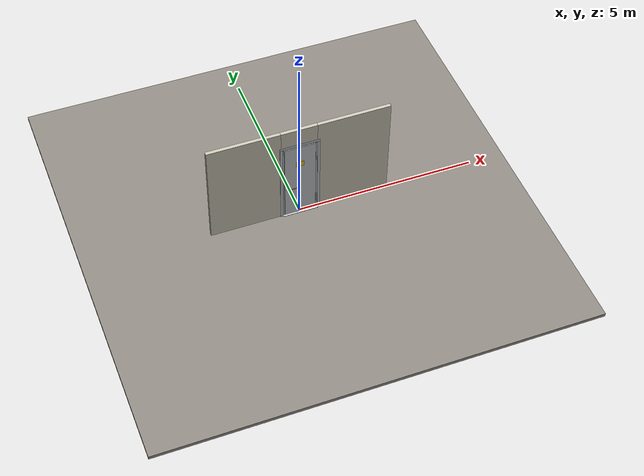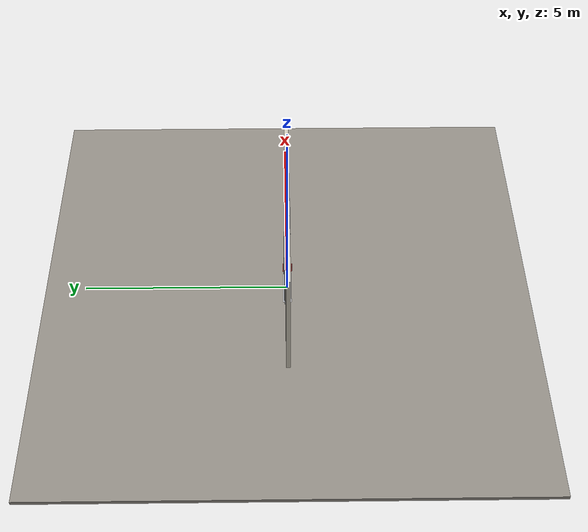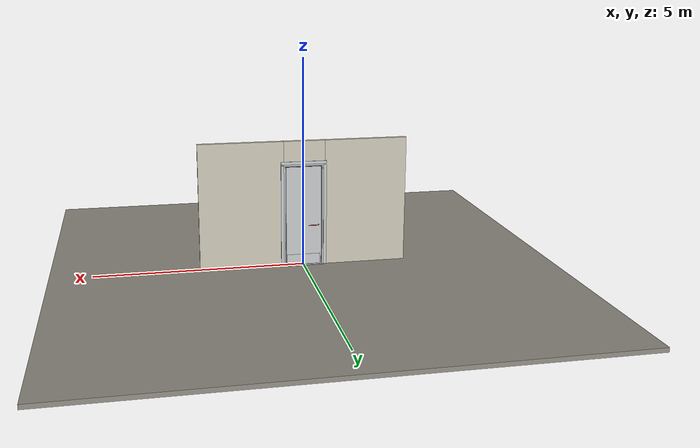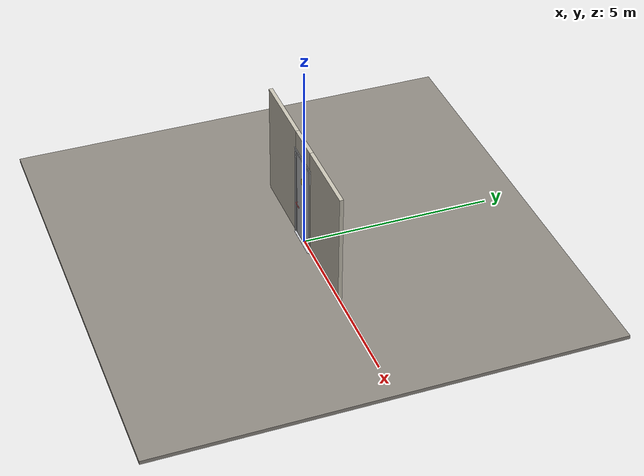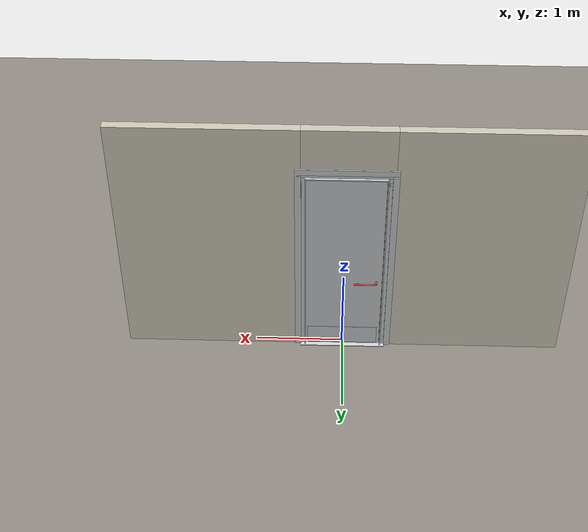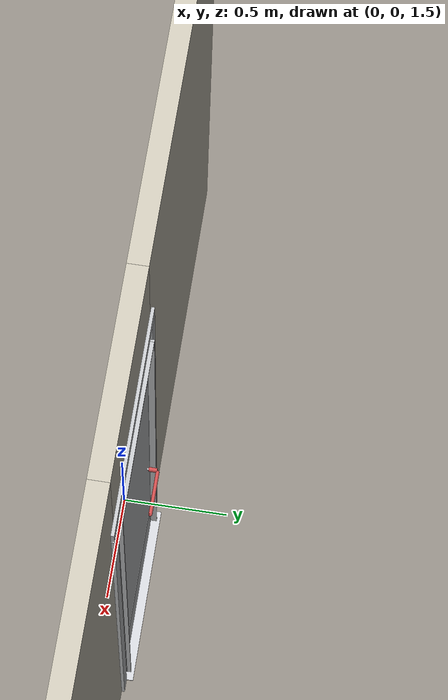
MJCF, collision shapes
<?xml version="1.0" ?>
<mujoco model="db0409_cold_storage_full">
  <compiler angle="radian" meshdir="../../hardware" texturedir="../../textures" autolimits="true" inertiafromgeom="false"/>
  <option timestep="0.002" integrator="implicitfast" cone="elliptic" impratio="10" noslip_iterations="3">
    <flag multiccd="enable"/>
  </option>
  <size memory="16M"/>
  <default>
    <geom condim="4" solref="0.005 1" solimp="0.95 0.99 0.001"/>
    <joint solreflimit="0.005 1" solimplimit="0.95 0.99 0.001"/>
    <tendon solreflimit="0.005 1"/>
    <equality solref="0.002 1"/>
  </default>
  <visual>
    <headlight ambient="0.4 0.4 0.4" diffuse="0.7 0.7 0.7" specular="0.2 0.2 0.2"/>
    <quality shadowsize="4096"/>
    <map znear="0.01" zfar="60"/>
  </visual>
  <asset>
    <mesh name="hinge_05d9a38dfa" file="hinge_05d9a38dfa.obj"/>
    <mesh name="hinge_jamb_953fb56768" file="hinge_jamb_953fb56768.obj"/>
    <mesh name="lever_40740b93f7" file="lever_40740b93f7.obj"/>
    <material name="mat_floor" rgba="0.55 0.53 0.5 1" specular="0.2" shininess="0.15" reflectance="0"/>
    <material name="mat_wall" rgba="0.78 0.76 0.7 1" specular="0.2" shininess="0.1" reflectance="0"/>
    <material name="mat_hinge" rgba="0.55 0.56 0.58 1" specular="0.8" shininess="0.55" reflectance="0.4"/>
    <material name="mat_leaf" rgba="0.75 0.76 0.77 1" specular="0.8" shininess="0.65" reflectance="0.4"/>
    <material name="mat_op_chrome" rgba="0.9 0.9 0.92 1" specular="0.8" shininess="0.9" reflectance="0.4"/>
    <material name="mat_trim" rgba="0.85 0.66 0.3 1" specular="0.8" shininess="0.75" reflectance="0.4"/>
    <material name="mat_bolt" rgba="0.75 0.76 0.77 1" specular="0.8" shininess="0.65" reflectance="0.4"/>
    <material name="mat_frame" rgba="0.75 0.76 0.77 1" specular="0.8" shininess="0.65" reflectance="0.4"/>
    <material name="mat_seal" rgba="0.1 0.1 0.1 1" specular="0.2" shininess="0.1" reflectance="0"/>
    <material name="mat_threshold" rgba="0.8 0.81 0.83 1" specular="0.8" shininess="0.6" reflectance="0.4"/>
    <material name="mat_kick" rgba="0.75 0.76 0.77 1" specular="0.8" shininess="0.65" reflectance="0.4"/>
    <material name="mat_placard" rgba="0.95 0.75 0.05 1" specular="0.2" shininess="0.5" reflectance="0"/>
    <texture name="skybox" type="skybox" builtin="gradient" rgb1="0.6 0.7 0.85" rgb2="0.9 0.92 0.95" width="256" height="256"/>
  </asset>
  <worldbody>
    <light name="sun" pos="1.5 -2.5 4" dir="-0.3 0.5 -0.8" directional="true" diffuse="0.8 0.8 0.8" specular="0.3 0.3 0.3" castshadow="true"/>
    <light name="fill" pos="-1.5 2.5 3" dir="0.3 -0.5 -0.7" directional="true" diffuse="0.35 0.35 0.4" castshadow="false"/>
    <camera name="robot_view" pos="0 -2.93125 2.05075" xyaxes="1 0 0 0 0.26963 0.962964" fovy="52"/>
    <camera name="far_view" pos="0 2.93125 2.05075" xyaxes="-1 0 0 0 -0.26963 0.962964" fovy="52"/>
    <camera name="iso" pos="-2.22775 -2.46225 2.51975" xyaxes="0.741536 -0.670913 0 0.242917 0.268487 0.932151" fovy="46"/>
    <camera name="detail_handle" pos="0.022 -0.905 1.28" xyaxes="0.97561 0.219512 0 -0.070934 0.315262 0.94635" fovy="38"/>
    <geom name="floor" type="box" size="6 6 0.05" pos="0 0 -0.05" material="mat_floor" group="0" contype="1" conaffinity="1" friction="0.8 0.005 0.0001" density="2400"/>
    <geom name="wall_left" type="box" size="0.9925 0.05 1.53" pos="-1.5075 0 1.53" material="mat_wall" group="0" contype="1" conaffinity="1" friction="0.6 0.005 0.0001" density="800"/>
    <geom name="wall_right" type="box" size="1.0075 0.05 1.53" pos="1.4925 0 1.53" material="mat_wall" group="0" contype="1" conaffinity="1" friction="0.6 0.005 0.0001" density="800"/>
    <geom name="wall_header" type="box" size="0.5 0.05 0.2625" pos="-0.015 0 2.7975" material="mat_wall" group="0" contype="1" conaffinity="1" friction="0.6 0.005 0.0001" density="800"/>
    <geom name="hinge_0_jamb" type="mesh" mesh="hinge_jamb_953fb56768" pos="0.437 -0.057 0.262" quat="0 0 1 0" material="mat_hinge" group="1" contype="0" conaffinity="0" density="7850"/>
    <geom name="hinge_1_jamb" type="mesh" mesh="hinge_jamb_953fb56768" pos="0.437 -0.057 1.2242" quat="0 0 1 0" material="mat_hinge" group="1" contype="0" conaffinity="0" density="7850"/>
    <geom name="hinge_2_jamb" type="mesh" mesh="hinge_jamb_953fb56768" pos="0.437 -0.057 2.2564" quat="0 0 1 0" material="mat_hinge" group="1" contype="0" conaffinity="0" density="7850"/>
    <geom name="jamb_hinge" type="box" size="0.0225 0.05 1.23" pos="0.4625 0 1.23" material="mat_frame" group="0" contype="1" conaffinity="1" friction="0.6 0.005 0.0001" density="300"/>
    <geom name="strike_2386_wall_n" type="box" size="0.0375 0.02125 0.019" pos="-0.4775 0.02875 2.3864" material="mat_frame" group="0" contype="1" conaffinity="1" friction="0.6 0.005 0.0001" density="300"/>
    <geom name="strike_2386_wall_p" type="box" size="0.0375 0.008 0.019" pos="-0.4775 -0.0155 2.3864" material="mat_frame" group="0" contype="1" conaffinity="1" friction="0.6 0.005 0.0001" density="300"/>
    <geom name="strike_2386_ramp" type="box" size="0.0375 0.023512 0.019" pos="-0.480582 -0.041168 2.3864" quat="0.997211 0 0 -0.074638" material="mat_frame" group="0" contype="1" conaffinity="1" friction="0.12 0.005 0.0001" density="300"/>
    <geom name="strike_2386_ramp_n" type="box" size="0.0375 0.023512 0.019" pos="-0.480582 0.029168 2.3864" quat="0.997211 0 0 0.074638" material="mat_frame" group="0" contype="1" conaffinity="1" friction="0.12 0.005 0.0001" density="300"/>
    <geom name="strike_2386_back" type="box" size="0.0325 0.0075 0.019" pos="-0.4825 0 2.3864" material="mat_frame" group="0" contype="1" conaffinity="1" friction="0.6 0.005 0.0001" density="300"/>
    <geom name="jamb_strike_0" type="box" size="0.0375 0.05 1.1837" pos="-0.4775 0 1.1837" material="mat_frame" group="0" contype="1" conaffinity="1" friction="0.6 0.005 0.0001" density="300"/>
    <geom name="jamb_strike_1" type="box" size="0.0375 0.05 0.0273" pos="-0.4775 0 2.4327" material="mat_frame" group="0" contype="1" conaffinity="1" friction="0.6 0.005 0.0001" density="300"/>
    <geom name="jamb_head" type="box" size="0.5 0.05 0.0225" pos="-0.015 0 2.4825" material="mat_frame" group="0" contype="1" conaffinity="1" friction="0.6 0.005 0.0001" density="300"/>
    <geom name="head_stud" type="box" size="0.5 0.05 0.015" pos="-0.015 0 2.52" material="mat_wall" group="0" contype="1" conaffinity="1" friction="0.6 0.005 0.0001" density="500"/>
    <geom name="stop_hinge" type="box" size="0.0055 0.016 1.23" pos="0.4345 0.0665 1.23" material="mat_frame" group="0" contype="1" conaffinity="1" friction="0.6 0.005 0.0001" density="300"/>
    <geom name="stop_strike" type="box" size="0.0055 0.016 1.23" pos="-0.4345 0.0665 1.23" material="mat_frame" group="0" contype="1" conaffinity="1" friction="0.6 0.005 0.0001" density="300"/>
    <geom name="stop_head" type="box" size="0.44 0.016 0.0055" pos="0 0.0665 2.4545" material="mat_frame" group="0" contype="1" conaffinity="1" friction="0.6 0.005 0.0001" density="300"/>
    <geom name="seal_hinge" type="box" size="0.004 0.006 1.23" pos="0.437 0.056 1.23" material="mat_seal" group="1" contype="0" conaffinity="0" density="1100"/>
    <geom name="seal_strike" type="box" size="0.004 0.006 1.23" pos="-0.437 0.056 1.23" material="mat_seal" group="1" contype="0" conaffinity="0" density="1100"/>
    <geom name="seal_head" type="box" size="0.42 0.006 0.008" pos="0 0.056 2.448" material="mat_seal" group="1" contype="0" conaffinity="0" density="1100"/>
    <geom name="casing_l_n" type="box" size="0.035 0.008 1.2525" pos="-0.515 -0.058 1.23" material="mat_frame" group="2" contype="0" conaffinity="0" density="300"/>
    <geom name="casing_r_n" type="box" size="0.035 0.008 1.2525" pos="0.515 -0.058 1.23" material="mat_frame" group="2" contype="0" conaffinity="0" density="300"/>
    <geom name="casing_h_n" type="box" size="0.55 0.008 0.035" pos="0 -0.058 2.535" material="mat_frame" group="2" contype="0" conaffinity="0" density="300"/>
    <geom name="casing_l_p" type="box" size="0.035 0.008 1.2525" pos="-0.515 0.058 1.23" material="mat_frame" group="2" contype="0" conaffinity="0" density="300"/>
    <geom name="casing_r_p" type="box" size="0.035 0.008 1.2525" pos="0.515 0.058 1.23" material="mat_frame" group="2" contype="0" conaffinity="0" density="300"/>
    <geom name="casing_h_p" type="box" size="0.55 0.008 0.035" pos="0 0.058 2.535" material="mat_frame" group="2" contype="0" conaffinity="0" density="300"/>
    <geom name="threshold" type="box" size="0.485 0.1 0.004" pos="0 0 0.004" material="mat_threshold" group="0" contype="1" conaffinity="1" friction="0.6 0.005 0.0001" density="2700"/>
    <site name="approach_point" pos="0 -1.5 0" quat="1 0 0 0" size="0.05" rgba="0.2 0.9 0.2 0.5" group="4"/>
    <site name="goal_point" pos="0 1.5 0" quat="1 0 0 0" size="0.05" rgba="0.2 0.9 0.2 0.5" group="4"/>
    <site name="door_plane_center" pos="0 0 1.23" quat="1 0 0 0" size="0.02" rgba="0.2 0.9 0.2 0.5" group="4"/>
    <body name="leaf_riser" pos="0.44 0 0">
      <inertial pos="-0.003 -0.057 0.055" mass="0.174012" quat="0 0.707107 0 0.707107" diaginertia="0.000017053 0.00002732 0.00002732"/>
      <joint name="leaf_rise" type="slide" axis="0 0 1" limited="true" range="0 0.0264" damping="1" armature="0.5"/>
      <geom name="leaf_riser_marker" type="cylinder" size="0.014 0.018" pos="-0.003 -0.057 0.055" material="mat_hinge" group="1" contype="0" conaffinity="0" density="7850"/>
      <body name="leaf" pos="0 0 0">
        <inertial pos="-0.411362 -0.000183 1.174779" mass="50.430877" quat="-0.49795 0.5036 0.493778 0.504594" diaginertia="3.427685938 26.7206195 30.048963484"/>
        <joint name="leaf_hinge" type="hinge" axis="0 0 1" pos="-0.003 -0.057 0" limited="true" range="0 1.919862" solreflimit="0.02 1" damping="0.291047" frictionloss="4.268042" armature="0.02"/>
        <geom name="leaf_slab" type="box" size="0.43 0.05 1.2122" pos="-0.433 0 1.2242" material="mat_leaf" group="0" contype="1" conaffinity="1" friction="0.35 0.005 0.0001" density="1"/>
        <geom name="hinge_0" type="mesh" mesh="hinge_05d9a38dfa" pos="-0.003 -0.057 0.262" quat="0 0 1 0" material="mat_hinge" group="1" contype="0" conaffinity="0" density="7850"/>
        <geom name="hinge_1" type="mesh" mesh="hinge_05d9a38dfa" pos="-0.003 -0.057 1.2242" quat="0 0 1 0" material="mat_hinge" group="1" contype="0" conaffinity="0" density="7850"/>
        <geom name="hinge_2" type="mesh" mesh="hinge_05d9a38dfa" pos="-0.003 -0.057 2.2564" quat="0 0 1 0" material="mat_hinge" group="1" contype="0" conaffinity="0" density="7850"/>
        <geom name="leaf_mag_catch_faceplate" type="box" size="0.0006 0.012 0.029" pos="-0.8624 0 2.3864" material="mat_bolt" group="1" contype="0" conaffinity="0" density="8500"/>
        <geom name="kick_plate_p" type="box" size="0.4 0.0008 0.125" pos="-0.433 0.0508 0.147" material="mat_kick" group="2" contype="0" conaffinity="0" density="7900"/>
        <geom name="warning_placard" type="box" size="0.11 0.001 0.08" pos="-0.433 -0.051 1.8303" material="mat_placard" group="2" contype="0" conaffinity="0" density="1000"/>
        <site name="leaf_edge_mid" pos="-0.863 0 1.2122" quat="1 0 0 0" size="0.02" rgba="0.2 0.9 0.2 0.5" group="4"/>
        <body name="leaf_handle" pos="-0.798 0 1">
          <inertial pos="0.046153 0 0" mass="2.987827" quat="0.707107 0 0 -0.707107" diaginertia="0.018437997 0.023746754 0.040214564"/>
          <joint name="leaf_handle_hinge" type="hinge" axis="0 1 0" limited="true" range="0 0.5" damping="0.589936" frictionloss="0.07" stiffness="2.5" springref="-0.96" armature="0.01"/>
          <geom name="leaf_handle_spindle" type="cylinder" size="0.006 0.058" pos="0 0 0" quat="0.707107 -0.707107 0 0" material="mat_op_chrome" group="1" contype="0" conaffinity="0" density="7850"/>
          <geom name="leaf_handle_lever_n" type="mesh" mesh="lever_40740b93f7" pos="0 -0.05 0" quat="0 0 -0.707107 0.707107" material="mat_op_chrome" group="1" contype="0" conaffinity="0" density="3000"/>
          <geom name="leaf_handle_lever_col_n" type="capsule" size="0.0095 0.1155" pos="0.125 -0.105 0" quat="0.707107 0 0.707107 0" material="mat_op_chrome" group="3" contype="1" conaffinity="1" rgba="0.8 0.3 0.3 0.25" friction="0.7 0.01 0.0001" density="3000"/>
          <geom name="leaf_handle_hub_col_n" type="cylinder" size="0.012 0.022" pos="0 -0.08 0" quat="0.707107 -0.707107 0 0" material="mat_op_chrome" group="3" contype="1" conaffinity="1" rgba="0.8 0.3 0.3 0.25" friction="0.6 0.005 0.0001" density="3000"/>
          <geom name="leaf_handle_lever_p" type="mesh" mesh="lever_40740b93f7" pos="0 0.05 0" quat="0 0 0.707107 0.707107" material="mat_op_chrome" group="1" contype="0" conaffinity="0" density="3000"/>
          <geom name="leaf_handle_lever_col_p" type="capsule" size="0.0095 0.1155" pos="0.125 0.105 0" quat="0.707107 0 0.707107 0" material="mat_op_chrome" group="3" contype="1" conaffinity="1" rgba="0.8 0.3 0.3 0.25" friction="0.7 0.01 0.0001" density="3000"/>
          <geom name="leaf_handle_hub_col_p" type="cylinder" size="0.012 0.022" pos="0 0.08 0" quat="0.707107 -0.707107 0 0" material="mat_op_chrome" group="3" contype="1" conaffinity="1" rgba="0.8 0.3 0.3 0.25" friction="0.6 0.005 0.0001" density="3000"/>
          <site name="leaf_handle_grip_n" pos="0.2 -0.105 0" quat="1 0 0 0" size="0.012" rgba="0.2 0.9 0.2 0.5" group="4"/>
          <site name="leaf_handle_grip_p" pos="0.2 0.105 0" quat="1 0 0 0" size="0.012" rgba="0.2 0.9 0.2 0.5" group="4"/>
        </body>
        <body name="leaf_mag_catch" pos="-0.863 0 2.3864">
          <inertial pos="0.012 0 0" mass="0.030762" quat="0 0 -0.707107 0.707107" diaginertia="0.000000526 0.000002949 0.000002949"/>
          <joint name="leaf_mag_catch_slide" type="slide" axis="1 0 0" limited="true" range="0 0.006" damping="2" frictionloss="0.3" stiffness="20000" springref="-0.006" armature="0.1"/>
          <geom name="leaf_mag_catch_capsule" type="capsule" size="0.006 0.012" pos="0.012 0 0" quat="0.707107 0 -0.707107 0" material="mat_bolt" group="0" contype="1" conaffinity="1" friction="0.2 0.005 0.0001" density="8500"/>
        </body>
      </body>
    </body>
  </worldbody>
  <equality>
    <joint name="leaf_rise_couple" joint1="leaf_rise" joint2="leaf_hinge" polycoef="0 0.007639 0 0 0" active="true"/>
  </equality>
  <sensor>
    <jointpos name="leaf_hinge_pos" joint="leaf_hinge"/>
    <jointvel name="leaf_hinge_vel" joint="leaf_hinge"/>
    <jointpos name="leaf_handle_hinge_pos" joint="leaf_handle_hinge"/>
    <jointvel name="leaf_handle_hinge_vel" joint="leaf_handle_hinge"/>
    <jointpos name="leaf_mag_catch_slide_pos" joint="leaf_mag_catch_slide"/>
    <jointvel name="leaf_mag_catch_slide_vel" joint="leaf_mag_catch_slide"/>
  </sensor>
</mujoco>
